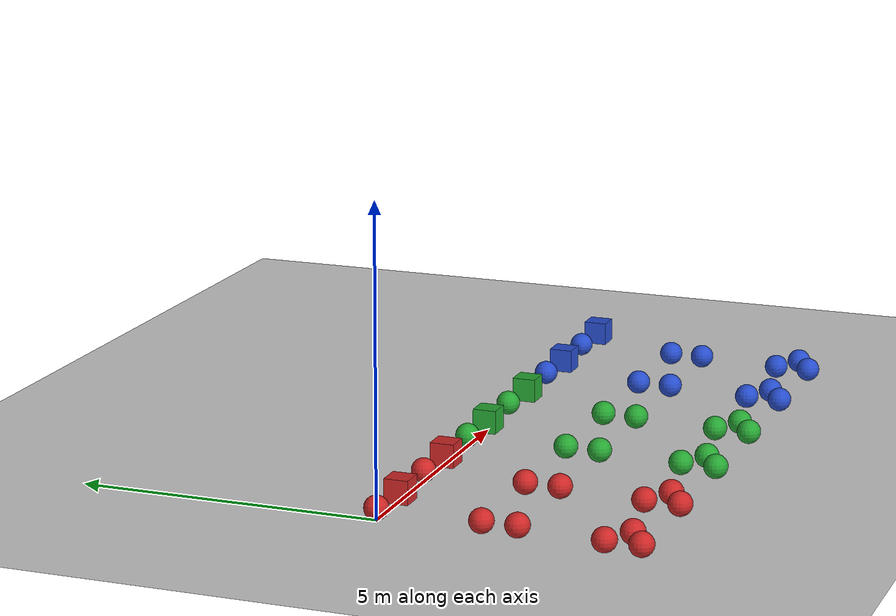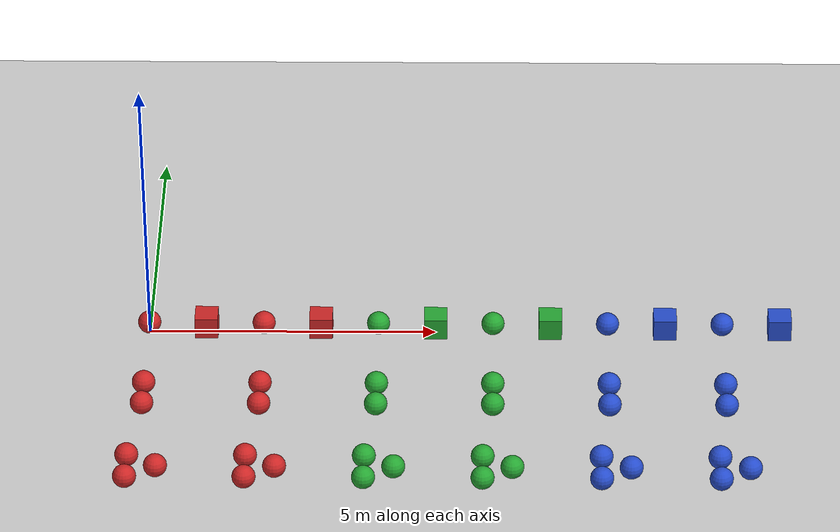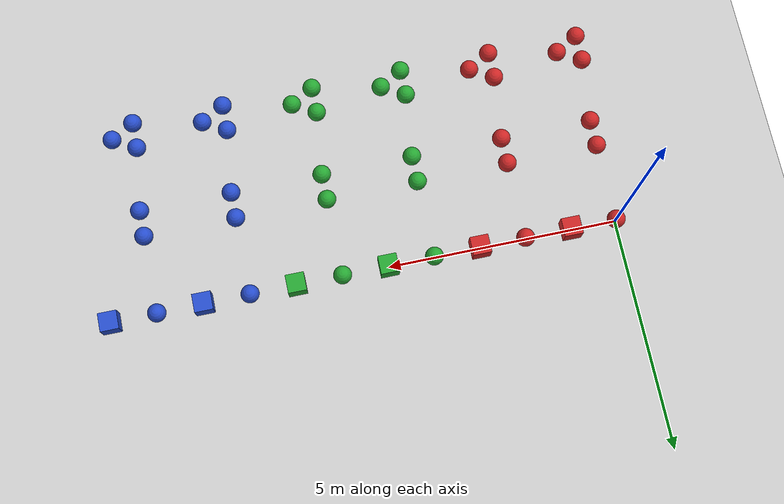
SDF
<?xml version="1.0" ?>
<!-- this file was generated using embedded ruby -->
<sdf version='1.6'>
  <world name='default'>
    <gui>
      <camera name='user_camera'>
        <pose>17 3 22 0 1.1 3.141592653589793</pose>
        <view_controller>orbit</view_controller>
      </camera>
    </gui>
    <physics type="ode">
      <dart>
        <collision_detector>ode</collision_detector>
      </dart>
    </physics>
    <include>
      <uri>model://sun</uri>
    </include>
    <include>
      <uri>model://ground_plane</uri>
    </include>
    <gravity>0 2 -9.81</gravity>

    <model name="lowball_0.2a">
      <pose>0 0 0 0 0 0</pose>
      <link name="link">
        <pose>0 0 0.2  0 0 0</pose>
        <inertial>
          <pose>0 0 -0.3  0 0 0</pose>
          <mass>1.0</mass>
          <inertia>
            <ixx>0.016000000000000004</ixx>
            <iyy>0.016000000000000004</iyy>
            <izz>0.016000000000000004</izz>
            <ixy>0.0</ixy>
            <ixz>0.0</ixz>
            <iyz>0.0</iyz>
          </inertia>
        </inertial>

        <collision name='collision_a'>
          <pose>0 0 0  0 0 0</pose>
          <geometry>
            <sphere>
              <radius>0.2</radius>
            </sphere>
          </geometry>
          <surface>
            <friction>
              <ode>
                <mu>0.5</mu>
                <mu2>0.5</mu2>
                <slip1>0.2</slip1>
                <slip2>0.2</slip2>
              </ode>
            </friction>
          </surface>
        </collision>
        <visual name='visual_a'>
          <pose>0 0 0  0 0 0</pose>
          <geometry>
            <sphere>
              <radius>0.2</radius>
            </sphere>
          </geometry>
          <material>
            <script>
              <uri>file://media/materials/scripts/gazebo.material</uri>
              <name>Gazebo/Red</name>
            </script>
          </material>
        </visual>

      </link>
    </model>

    <model name="lowball_0.2b">
      <pose>2 0 0 0 0 0</pose>
      <link name="link">
        <pose>0 0 0.2  0 0 0</pose>
        <inertial>
          <pose>0 0 -0.3  0 0 0</pose>
          <mass>2.0</mass>
          <inertia>
            <ixx>0.03200000000000001</ixx>
            <iyy>0.03200000000000001</iyy>
            <izz>0.03200000000000001</izz>
            <ixy>0.0</ixy>
            <ixz>0.0</ixz>
            <iyz>0.0</iyz>
          </inertia>
        </inertial>

        <collision name='collision_a'>
          <pose>0 0 0  0 0 0</pose>
          <geometry>
            <sphere>
              <radius>0.2</radius>
            </sphere>
          </geometry>
          <surface>
            <friction>
              <ode>
                <mu>0.5</mu>
                <mu2>0.5</mu2>
                <slip1>0.1</slip1>
                <slip2>0.1</slip2>
              </ode>
            </friction>
          </surface>
        </collision>
        <visual name='visual_a'>
          <pose>0 0 0  0 0 0</pose>
          <geometry>
            <sphere>
              <radius>0.2</radius>
            </sphere>
          </geometry>
          <material>
            <script>
              <uri>file://media/materials/scripts/gazebo.material</uri>
              <name>Gazebo/Red</name>
            </script>
          </material>
        </visual>

      </link>
    </model>

    <model name="lowball_0.4a">
      <pose>4 0 0 0 0 0</pose>
      <link name="link">
        <pose>0 0 0.2  0 0 0</pose>
        <inertial>
          <pose>0 0 -0.3  0 0 0</pose>
          <mass>2.0</mass>
          <inertia>
            <ixx>0.03200000000000001</ixx>
            <iyy>0.03200000000000001</iyy>
            <izz>0.03200000000000001</izz>
            <ixy>0.0</ixy>
            <ixz>0.0</ixz>
            <iyz>0.0</iyz>
          </inertia>
        </inertial>

        <collision name='collision_a'>
          <pose>0 0 0  0 0 0</pose>
          <geometry>
            <sphere>
              <radius>0.2</radius>
            </sphere>
          </geometry>
          <surface>
            <friction>
              <ode>
                <mu>0.5</mu>
                <mu2>0.5</mu2>
                <slip1>0.2</slip1>
                <slip2>0.2</slip2>
              </ode>
            </friction>
          </surface>
        </collision>
        <visual name='visual_a'>
          <pose>0 0 0  0 0 0</pose>
          <geometry>
            <sphere>
              <radius>0.2</radius>
            </sphere>
          </geometry>
          <material>
            <script>
              <uri>file://media/materials/scripts/gazebo.material</uri>
              <name>Gazebo/Green</name>
            </script>
          </material>
        </visual>

      </link>
    </model>

    <model name="lowball_0.4b">
      <pose>6 0 0 0 0 0</pose>
      <link name="link">
        <pose>0 0 0.2  0 0 0</pose>
        <inertial>
          <pose>0 0 -0.3  0 0 0</pose>
          <mass>4.0</mass>
          <inertia>
            <ixx>0.06400000000000002</ixx>
            <iyy>0.06400000000000002</iyy>
            <izz>0.06400000000000002</izz>
            <ixy>0.0</ixy>
            <ixz>0.0</ixz>
            <iyz>0.0</iyz>
          </inertia>
        </inertial>

        <collision name='collision_a'>
          <pose>0 0 0  0 0 0</pose>
          <geometry>
            <sphere>
              <radius>0.2</radius>
            </sphere>
          </geometry>
          <surface>
            <friction>
              <ode>
                <mu>0.5</mu>
                <mu2>0.5</mu2>
                <slip1>0.1</slip1>
                <slip2>0.1</slip2>
              </ode>
            </friction>
          </surface>
        </collision>
        <visual name='visual_a'>
          <pose>0 0 0  0 0 0</pose>
          <geometry>
            <sphere>
              <radius>0.2</radius>
            </sphere>
          </geometry>
          <material>
            <script>
              <uri>file://media/materials/scripts/gazebo.material</uri>
              <name>Gazebo/Green</name>
            </script>
          </material>
        </visual>

      </link>
    </model>

    <model name="lowball_0.6a">
      <pose>8 0 0 0 0 0</pose>
      <link name="link">
        <pose>0 0 0.2  0 0 0</pose>
        <inertial>
          <pose>0 0 -0.3  0 0 0</pose>
          <mass>3.0</mass>
          <inertia>
            <ixx>0.048000000000000015</ixx>
            <iyy>0.048000000000000015</iyy>
            <izz>0.048000000000000015</izz>
            <ixy>0.0</ixy>
            <ixz>0.0</ixz>
            <iyz>0.0</iyz>
          </inertia>
        </inertial>

        <collision name='collision_a'>
          <pose>0 0 0  0 0 0</pose>
          <geometry>
            <sphere>
              <radius>0.2</radius>
            </sphere>
          </geometry>
          <surface>
            <friction>
              <ode>
                <mu>0.5</mu>
                <mu2>0.5</mu2>
                <slip1>0.2</slip1>
                <slip2>0.2</slip2>
              </ode>
            </friction>
          </surface>
        </collision>
        <visual name='visual_a'>
          <pose>0 0 0  0 0 0</pose>
          <geometry>
            <sphere>
              <radius>0.2</radius>
            </sphere>
          </geometry>
          <material>
            <script>
              <uri>file://media/materials/scripts/gazebo.material</uri>
              <name>Gazebo/Blue</name>
            </script>
          </material>
        </visual>

      </link>
    </model>

    <model name="lowball_0.6b">
      <pose>10 0 0 0 0 0</pose>
      <link name="link">
        <pose>0 0 0.2  0 0 0</pose>
        <inertial>
          <pose>0 0 -0.3  0 0 0</pose>
          <mass>6.0</mass>
          <inertia>
            <ixx>0.09600000000000003</ixx>
            <iyy>0.09600000000000003</iyy>
            <izz>0.09600000000000003</izz>
            <ixy>0.0</ixy>
            <ixz>0.0</ixz>
            <iyz>0.0</iyz>
          </inertia>
        </inertial>

        <collision name='collision_a'>
          <pose>0 0 0  0 0 0</pose>
          <geometry>
            <sphere>
              <radius>0.2</radius>
            </sphere>
          </geometry>
          <surface>
            <friction>
              <ode>
                <mu>0.5</mu>
                <mu2>0.5</mu2>
                <slip1>0.1</slip1>
                <slip2>0.1</slip2>
              </ode>
            </friction>
          </surface>
        </collision>
        <visual name='visual_a'>
          <pose>0 0 0  0 0 0</pose>
          <geometry>
            <sphere>
              <radius>0.2</radius>
            </sphere>
          </geometry>
          <material>
            <script>
              <uri>file://media/materials/scripts/gazebo.material</uri>
              <name>Gazebo/Blue</name>
            </script>
          </material>
        </visual>

      </link>
    </model>

    <model name="twoball_0.2a">
      <pose>0 -2 0 0 0 0</pose>
      <link name="link">
        <pose>0 0 0.2  0 0 0</pose>
        <inertial>
          <pose>0 0.0 0  0 0 0</pose>
          <mass>1.0</mass>
          <inertia>
            <ixx>0.09933333333333336</ixx>
            <iyy>0.016000000000000004</iyy>
            <izz>0.09933333333333336</izz>
            <ixy>0.0</ixy>
            <ixz>0.0</ixz>
            <iyz>0.0</iyz>
          </inertia>
        </inertial>

        <collision name='collision_a'>
          <pose>0 0.2886751345948129 0  0 0 0</pose>
          <geometry>
            <sphere>
              <radius>0.2</radius>
            </sphere>
          </geometry>
          <surface>
            <friction>
              <ode>
                <mu>0.5</mu>
                <mu2>0.5</mu2>
                <slip1>0.2</slip1>
                <slip2>0.2</slip2>
              </ode>
            </friction>
          </surface>
        </collision>
        <visual name='visual_a'>
          <pose>0 0.2886751345948129 0  0 0 0</pose>
          <geometry>
            <sphere>
              <radius>0.2</radius>
            </sphere>
          </geometry>
          <material>
            <script>
              <uri>file://media/materials/scripts/gazebo.material</uri>
              <name>Gazebo/Red</name>
            </script>
          </material>
        </visual>

        <collision name='collision_b'>
          <pose>0 -0.2886751345948129 0  0 0 0</pose>
          <geometry>
            <sphere>
              <radius>0.2</radius>
            </sphere>
          </geometry>
          <surface>
            <friction>
              <ode>
                <mu>0.5</mu>
                <mu2>0.5</mu2>
                <slip1>0.2</slip1>
                <slip2>0.2</slip2>
              </ode>
            </friction>
          </surface>
        </collision>
        <visual name='visual_b'>
          <pose>0 -0.2886751345948129 0  0 0 0</pose>
          <geometry>
            <sphere>
              <radius>0.2</radius>
            </sphere>
          </geometry>
          <material>
            <script>
              <uri>file://media/materials/scripts/gazebo.material</uri>
              <name>Gazebo/Red</name>
            </script>
          </material>
        </visual>

      </link>
    </model>

    <model name="twoball_0.2b">
      <pose>2 -2 0 0 0 0</pose>
      <link name="link">
        <pose>0 0 0.2  0 0 0</pose>
        <inertial>
          <pose>0 0.0 0  0 0 0</pose>
          <mass>2.0</mass>
          <inertia>
            <ixx>0.1986666666666667</ixx>
            <iyy>0.03200000000000001</iyy>
            <izz>0.1986666666666667</izz>
            <ixy>0.0</ixy>
            <ixz>0.0</ixz>
            <iyz>0.0</iyz>
          </inertia>
        </inertial>

        <collision name='collision_a'>
          <pose>0 0.2886751345948129 0  0 0 0</pose>
          <geometry>
            <sphere>
              <radius>0.2</radius>
            </sphere>
          </geometry>
          <surface>
            <friction>
              <ode>
                <mu>0.5</mu>
                <mu2>0.5</mu2>
                <slip1>0.1</slip1>
                <slip2>0.1</slip2>
              </ode>
            </friction>
          </surface>
        </collision>
        <visual name='visual_a'>
          <pose>0 0.2886751345948129 0  0 0 0</pose>
          <geometry>
            <sphere>
              <radius>0.2</radius>
            </sphere>
          </geometry>
          <material>
            <script>
              <uri>file://media/materials/scripts/gazebo.material</uri>
              <name>Gazebo/Red</name>
            </script>
          </material>
        </visual>

        <collision name='collision_b'>
          <pose>0 -0.2886751345948129 0  0 0 0</pose>
          <geometry>
            <sphere>
              <radius>0.2</radius>
            </sphere>
          </geometry>
          <surface>
            <friction>
              <ode>
                <mu>0.5</mu>
                <mu2>0.5</mu2>
                <slip1>0.1</slip1>
                <slip2>0.1</slip2>
              </ode>
            </friction>
          </surface>
        </collision>
        <visual name='visual_b'>
          <pose>0 -0.2886751345948129 0  0 0 0</pose>
          <geometry>
            <sphere>
              <radius>0.2</radius>
            </sphere>
          </geometry>
          <material>
            <script>
              <uri>file://media/materials/scripts/gazebo.material</uri>
              <name>Gazebo/Red</name>
            </script>
          </material>
        </visual>

      </link>
    </model>

    <model name="twoball_0.4a">
      <pose>4 -2 0 0 0 0</pose>
      <link name="link">
        <pose>0 0 0.2  0 0 0</pose>
        <inertial>
          <pose>0 0.0 0  0 0 0</pose>
          <mass>2.0</mass>
          <inertia>
            <ixx>0.1986666666666667</ixx>
            <iyy>0.03200000000000001</iyy>
            <izz>0.1986666666666667</izz>
            <ixy>0.0</ixy>
            <ixz>0.0</ixz>
            <iyz>0.0</iyz>
          </inertia>
        </inertial>

        <collision name='collision_a'>
          <pose>0 0.2886751345948129 0  0 0 0</pose>
          <geometry>
            <sphere>
              <radius>0.2</radius>
            </sphere>
          </geometry>
          <surface>
            <friction>
              <ode>
                <mu>0.5</mu>
                <mu2>0.5</mu2>
                <slip1>0.2</slip1>
                <slip2>0.2</slip2>
              </ode>
            </friction>
          </surface>
        </collision>
        <visual name='visual_a'>
          <pose>0 0.2886751345948129 0  0 0 0</pose>
          <geometry>
            <sphere>
              <radius>0.2</radius>
            </sphere>
          </geometry>
          <material>
            <script>
              <uri>file://media/materials/scripts/gazebo.material</uri>
              <name>Gazebo/Green</name>
            </script>
          </material>
        </visual>

        <collision name='collision_b'>
          <pose>0 -0.2886751345948129 0  0 0 0</pose>
          <geometry>
            <sphere>
              <radius>0.2</radius>
            </sphere>
          </geometry>
          <surface>
            <friction>
              <ode>
                <mu>0.5</mu>
                <mu2>0.5</mu2>
                <slip1>0.2</slip1>
                <slip2>0.2</slip2>
              </ode>
            </friction>
          </surface>
        </collision>
        <visual name='visual_b'>
          <pose>0 -0.2886751345948129 0  0 0 0</pose>
          <geometry>
            <sphere>
              <radius>0.2</radius>
            </sphere>
          </geometry>
          <material>
            <script>
              <uri>file://media/materials/scripts/gazebo.material</uri>
              <name>Gazebo/Green</name>
            </script>
          </material>
        </visual>

      </link>
    </model>

    <model name="twoball_0.4b">
      <pose>6 -2 0 0 0 0</pose>
      <link name="link">
        <pose>0 0 0.2  0 0 0</pose>
        <inertial>
          <pose>0 0.0 0  0 0 0</pose>
          <mass>4.0</mass>
          <inertia>
            <ixx>0.3973333333333334</ixx>
            <iyy>0.06400000000000002</iyy>
            <izz>0.3973333333333334</izz>
            <ixy>0.0</ixy>
            <ixz>0.0</ixz>
            <iyz>0.0</iyz>
          </inertia>
        </inertial>

        <collision name='collision_a'>
          <pose>0 0.2886751345948129 0  0 0 0</pose>
          <geometry>
            <sphere>
              <radius>0.2</radius>
            </sphere>
          </geometry>
          <surface>
            <friction>
              <ode>
                <mu>0.5</mu>
                <mu2>0.5</mu2>
                <slip1>0.1</slip1>
                <slip2>0.1</slip2>
              </ode>
            </friction>
          </surface>
        </collision>
        <visual name='visual_a'>
          <pose>0 0.2886751345948129 0  0 0 0</pose>
          <geometry>
            <sphere>
              <radius>0.2</radius>
            </sphere>
          </geometry>
          <material>
            <script>
              <uri>file://media/materials/scripts/gazebo.material</uri>
              <name>Gazebo/Green</name>
            </script>
          </material>
        </visual>

        <collision name='collision_b'>
          <pose>0 -0.2886751345948129 0  0 0 0</pose>
          <geometry>
            <sphere>
              <radius>0.2</radius>
            </sphere>
          </geometry>
          <surface>
            <friction>
              <ode>
                <mu>0.5</mu>
                <mu2>0.5</mu2>
                <slip1>0.1</slip1>
                <slip2>0.1</slip2>
              </ode>
            </friction>
          </surface>
        </collision>
        <visual name='visual_b'>
          <pose>0 -0.2886751345948129 0  0 0 0</pose>
          <geometry>
            <sphere>
              <radius>0.2</radius>
            </sphere>
          </geometry>
          <material>
            <script>
              <uri>file://media/materials/scripts/gazebo.material</uri>
              <name>Gazebo/Green</name>
            </script>
          </material>
        </visual>

      </link>
    </model>

    <model name="twoball_0.6a">
      <pose>8 -2 0 0 0 0</pose>
      <link name="link">
        <pose>0 0 0.2  0 0 0</pose>
        <inertial>
          <pose>0 0.0 0  0 0 0</pose>
          <mass>3.0</mass>
          <inertia>
            <ixx>0.29800000000000004</ixx>
            <iyy>0.048000000000000015</iyy>
            <izz>0.29800000000000004</izz>
            <ixy>0.0</ixy>
            <ixz>0.0</ixz>
            <iyz>0.0</iyz>
          </inertia>
        </inertial>

        <collision name='collision_a'>
          <pose>0 0.2886751345948129 0  0 0 0</pose>
          <geometry>
            <sphere>
              <radius>0.2</radius>
            </sphere>
          </geometry>
          <surface>
            <friction>
              <ode>
                <mu>0.5</mu>
                <mu2>0.5</mu2>
                <slip1>0.2</slip1>
                <slip2>0.2</slip2>
              </ode>
            </friction>
          </surface>
        </collision>
        <visual name='visual_a'>
          <pose>0 0.2886751345948129 0  0 0 0</pose>
          <geometry>
            <sphere>
              <radius>0.2</radius>
            </sphere>
          </geometry>
          <material>
            <script>
              <uri>file://media/materials/scripts/gazebo.material</uri>
              <name>Gazebo/Blue</name>
            </script>
          </material>
        </visual>

        <collision name='collision_b'>
          <pose>0 -0.2886751345948129 0  0 0 0</pose>
          <geometry>
            <sphere>
              <radius>0.2</radius>
            </sphere>
          </geometry>
          <surface>
            <friction>
              <ode>
                <mu>0.5</mu>
                <mu2>0.5</mu2>
                <slip1>0.2</slip1>
                <slip2>0.2</slip2>
              </ode>
            </friction>
          </surface>
        </collision>
        <visual name='visual_b'>
          <pose>0 -0.2886751345948129 0  0 0 0</pose>
          <geometry>
            <sphere>
              <radius>0.2</radius>
            </sphere>
          </geometry>
          <material>
            <script>
              <uri>file://media/materials/scripts/gazebo.material</uri>
              <name>Gazebo/Blue</name>
            </script>
          </material>
        </visual>

      </link>
    </model>

    <model name="twoball_0.6b">
      <pose>10 -2 0 0 0 0</pose>
      <link name="link">
        <pose>0 0 0.2  0 0 0</pose>
        <inertial>
          <pose>0 0.0 0  0 0 0</pose>
          <mass>6.0</mass>
          <inertia>
            <ixx>0.5960000000000001</ixx>
            <iyy>0.09600000000000003</iyy>
            <izz>0.5960000000000001</izz>
            <ixy>0.0</ixy>
            <ixz>0.0</ixz>
            <iyz>0.0</iyz>
          </inertia>
        </inertial>

        <collision name='collision_a'>
          <pose>0 0.2886751345948129 0  0 0 0</pose>
          <geometry>
            <sphere>
              <radius>0.2</radius>
            </sphere>
          </geometry>
          <surface>
            <friction>
              <ode>
                <mu>0.5</mu>
                <mu2>0.5</mu2>
                <slip1>0.1</slip1>
                <slip2>0.1</slip2>
              </ode>
            </friction>
          </surface>
        </collision>
        <visual name='visual_a'>
          <pose>0 0.2886751345948129 0  0 0 0</pose>
          <geometry>
            <sphere>
              <radius>0.2</radius>
            </sphere>
          </geometry>
          <material>
            <script>
              <uri>file://media/materials/scripts/gazebo.material</uri>
              <name>Gazebo/Blue</name>
            </script>
          </material>
        </visual>

        <collision name='collision_b'>
          <pose>0 -0.2886751345948129 0  0 0 0</pose>
          <geometry>
            <sphere>
              <radius>0.2</radius>
            </sphere>
          </geometry>
          <surface>
            <friction>
              <ode>
                <mu>0.5</mu>
                <mu2>0.5</mu2>
                <slip1>0.1</slip1>
                <slip2>0.1</slip2>
              </ode>
            </friction>
          </surface>
        </collision>
        <visual name='visual_b'>
          <pose>0 -0.2886751345948129 0  0 0 0</pose>
          <geometry>
            <sphere>
              <radius>0.2</radius>
            </sphere>
          </geometry>
          <material>
            <script>
              <uri>file://media/materials/scripts/gazebo.material</uri>
              <name>Gazebo/Blue</name>
            </script>
          </material>
        </visual>

      </link>
    </model>

    <model name="triball_0.2a">
      <pose>0 -4 0 0 0 0</pose>
      <link name="link">
        <pose>0 0 0.2  0 0 0</pose>
        <inertial>
          <pose>0.0 0.0 0  0 0 0</pose>
          <mass>1.0</mass>
          <inertia>
            <ixx>0.07155555555555557</ixx>
            <iyy>0.07155555555555555</iyy>
            <izz>0.12711111111111112</izz>
            <ixy>0.0</ixy>
            <ixz>0.0</ixz>
            <iyz>0.0</iyz>
          </inertia>
        </inertial>

        <collision name='collision_a'>
          <pose>0.3333333333333333 0 0  0 0 0</pose>
          <geometry>
            <sphere>
              <radius>0.2</radius>
            </sphere>
          </geometry>
          <surface>
            <friction>
              <ode>
                <mu>0.5</mu>
                <mu2>0.5</mu2>
                <slip1>0.2</slip1>
                <slip2>0.2</slip2>
              </ode>
            </friction>
          </surface>
        </collision>
        <visual name='visual_a'>
          <pose>0.3333333333333333 0 0  0 0 0</pose>
          <geometry>
            <sphere>
              <radius>0.2</radius>
            </sphere>
          </geometry>
          <material>
            <script>
              <uri>file://media/materials/scripts/gazebo.material</uri>
              <name>Gazebo/Red</name>
            </script>
          </material>
        </visual>

        <collision name='collision_b'>
          <pose>-0.16666666666666666 0.2886751345948129 0  0 0 0</pose>
          <geometry>
            <sphere>
              <radius>0.2</radius>
            </sphere>
          </geometry>
          <surface>
            <friction>
              <ode>
                <mu>0.5</mu>
                <mu2>0.5</mu2>
                <slip1>0.2</slip1>
                <slip2>0.2</slip2>
              </ode>
            </friction>
          </surface>
        </collision>
        <visual name='visual_b'>
          <pose>-0.16666666666666666 0.2886751345948129 0  0 0 0</pose>
          <geometry>
            <sphere>
              <radius>0.2</radius>
            </sphere>
          </geometry>
          <material>
            <script>
              <uri>file://media/materials/scripts/gazebo.material</uri>
              <name>Gazebo/Red</name>
            </script>
          </material>
        </visual>

        <collision name='collision_c'>
          <pose>-0.16666666666666666 -0.2886751345948129 0  0 0 0</pose>
          <geometry>
            <sphere>
              <radius>0.2</radius>
            </sphere>
          </geometry>
          <surface>
            <friction>
              <ode>
                <mu>0.5</mu>
                <mu2>0.5</mu2>
                <slip1>0.2</slip1>
                <slip2>0.2</slip2>
              </ode>
            </friction>
          </surface>
        </collision>
        <visual name='visual_c'>
          <pose>-0.16666666666666666 -0.2886751345948129 0  0 0 0</pose>
          <geometry>
            <sphere>
              <radius>0.2</radius>
            </sphere>
          </geometry>
          <material>
            <script>
              <uri>file://media/materials/scripts/gazebo.material</uri>
              <name>Gazebo/Red</name>
            </script>
          </material>
        </visual>

      </link>
    </model>

    <model name="triball_0.2b">
      <pose>2 -4 0 0 0 0</pose>
      <link name="link">
        <pose>0 0 0.2  0 0 0</pose>
        <inertial>
          <pose>0.0 0.0 0  0 0 0</pose>
          <mass>2.0</mass>
          <inertia>
            <ixx>0.14311111111111113</ixx>
            <iyy>0.1431111111111111</iyy>
            <izz>0.25422222222222224</izz>
            <ixy>0.0</ixy>
            <ixz>0.0</ixz>
            <iyz>0.0</iyz>
          </inertia>
        </inertial>

        <collision name='collision_a'>
          <pose>0.3333333333333333 0 0  0 0 0</pose>
          <geometry>
            <sphere>
              <radius>0.2</radius>
            </sphere>
          </geometry>
          <surface>
            <friction>
              <ode>
                <mu>0.5</mu>
                <mu2>0.5</mu2>
                <slip1>0.1</slip1>
                <slip2>0.1</slip2>
              </ode>
            </friction>
          </surface>
        </collision>
        <visual name='visual_a'>
          <pose>0.3333333333333333 0 0  0 0 0</pose>
          <geometry>
            <sphere>
              <radius>0.2</radius>
            </sphere>
          </geometry>
          <material>
            <script>
              <uri>file://media/materials/scripts/gazebo.material</uri>
              <name>Gazebo/Red</name>
            </script>
          </material>
        </visual>

        <collision name='collision_b'>
          <pose>-0.16666666666666666 0.2886751345948129 0  0 0 0</pose>
          <geometry>
            <sphere>
              <radius>0.2</radius>
            </sphere>
          </geometry>
          <surface>
            <friction>
              <ode>
                <mu>0.5</mu>
                <mu2>0.5</mu2>
                <slip1>0.1</slip1>
                <slip2>0.1</slip2>
              </ode>
            </friction>
          </surface>
        </collision>
        <visual name='visual_b'>
          <pose>-0.16666666666666666 0.2886751345948129 0  0 0 0</pose>
          <geometry>
            <sphere>
              <radius>0.2</radius>
            </sphere>
          </geometry>
          <material>
            <script>
              <uri>file://media/materials/scripts/gazebo.material</uri>
              <name>Gazebo/Red</name>
            </script>
          </material>
        </visual>

        <collision name='collision_c'>
          <pose>-0.16666666666666666 -0.2886751345948129 0  0 0 0</pose>
          <geometry>
            <sphere>
              <radius>0.2</radius>
            </sphere>
          </geometry>
          <surface>
            <friction>
              <ode>
                <mu>0.5</mu>
                <mu2>0.5</mu2>
                <slip1>0.1</slip1>
                <slip2>0.1</slip2>
              </ode>
            </friction>
          </surface>
        </collision>
        <visual name='visual_c'>
          <pose>-0.16666666666666666 -0.2886751345948129 0  0 0 0</pose>
          <geometry>
            <sphere>
              <radius>0.2</radius>
            </sphere>
          </geometry>
          <material>
            <script>
              <uri>file://media/materials/scripts/gazebo.material</uri>
              <name>Gazebo/Red</name>
            </script>
          </material>
        </visual>

      </link>
    </model>

    <model name="triball_0.4a">
      <pose>4 -4 0 0 0 0</pose>
      <link name="link">
        <pose>0 0 0.2  0 0 0</pose>
        <inertial>
          <pose>0.0 0.0 0  0 0 0</pose>
          <mass>2.0</mass>
          <inertia>
            <ixx>0.14311111111111113</ixx>
            <iyy>0.1431111111111111</iyy>
            <izz>0.25422222222222224</izz>
            <ixy>0.0</ixy>
            <ixz>0.0</ixz>
            <iyz>0.0</iyz>
          </inertia>
        </inertial>

        <collision name='collision_a'>
          <pose>0.3333333333333333 0 0  0 0 0</pose>
          <geometry>
            <sphere>
              <radius>0.2</radius>
            </sphere>
          </geometry>
          <surface>
            <friction>
              <ode>
                <mu>0.5</mu>
                <mu2>0.5</mu2>
                <slip1>0.2</slip1>
                <slip2>0.2</slip2>
              </ode>
            </friction>
          </surface>
        </collision>
        <visual name='visual_a'>
          <pose>0.3333333333333333 0 0  0 0 0</pose>
          <geometry>
            <sphere>
              <radius>0.2</radius>
            </sphere>
          </geometry>
          <material>
            <script>
              <uri>file://media/materials/scripts/gazebo.material</uri>
              <name>Gazebo/Green</name>
            </script>
          </material>
        </visual>

        <collision name='collision_b'>
          <pose>-0.16666666666666666 0.2886751345948129 0  0 0 0</pose>
          <geometry>
            <sphere>
              <radius>0.2</radius>
            </sphere>
          </geometry>
          <surface>
            <friction>
              <ode>
                <mu>0.5</mu>
                <mu2>0.5</mu2>
                <slip1>0.2</slip1>
                <slip2>0.2</slip2>
              </ode>
            </friction>
          </surface>
        </collision>
        <visual name='visual_b'>
          <pose>-0.16666666666666666 0.2886751345948129 0  0 0 0</pose>
          <geometry>
            <sphere>
              <radius>0.2</radius>
            </sphere>
          </geometry>
          <material>
            <script>
              <uri>file://media/materials/scripts/gazebo.material</uri>
              <name>Gazebo/Green</name>
            </script>
          </material>
        </visual>

        <collision name='collision_c'>
          <pose>-0.16666666666666666 -0.2886751345948129 0  0 0 0</pose>
          <geometry>
            <sphere>
              <radius>0.2</radius>
            </sphere>
          </geometry>
          <surface>
            <friction>
              <ode>
                <mu>0.5</mu>
                <mu2>0.5</mu2>
                <slip1>0.2</slip1>
                <slip2>0.2</slip2>
              </ode>
            </friction>
          </surface>
        </collision>
        <visual name='visual_c'>
          <pose>-0.16666666666666666 -0.2886751345948129 0  0 0 0</pose>
          <geometry>
            <sphere>
              <radius>0.2</radius>
            </sphere>
          </geometry>
          <material>
            <script>
              <uri>file://media/materials/scripts/gazebo.material</uri>
              <name>Gazebo/Green</name>
            </script>
          </material>
        </visual>

      </link>
    </model>

    <model name="triball_0.4b">
      <pose>6 -4 0 0 0 0</pose>
      <link name="link">
        <pose>0 0 0.2  0 0 0</pose>
        <inertial>
          <pose>0.0 0.0 0  0 0 0</pose>
          <mass>4.0</mass>
          <inertia>
            <ixx>0.28622222222222227</ixx>
            <iyy>0.2862222222222222</iyy>
            <izz>0.5084444444444445</izz>
            <ixy>0.0</ixy>
            <ixz>0.0</ixz>
            <iyz>0.0</iyz>
          </inertia>
        </inertial>

        <collision name='collision_a'>
          <pose>0.3333333333333333 0 0  0 0 0</pose>
          <geometry>
            <sphere>
              <radius>0.2</radius>
            </sphere>
          </geometry>
          <surface>
            <friction>
              <ode>
                <mu>0.5</mu>
                <mu2>0.5</mu2>
                <slip1>0.1</slip1>
                <slip2>0.1</slip2>
              </ode>
            </friction>
          </surface>
        </collision>
        <visual name='visual_a'>
          <pose>0.3333333333333333 0 0  0 0 0</pose>
          <geometry>
            <sphere>
              <radius>0.2</radius>
            </sphere>
          </geometry>
          <material>
            <script>
              <uri>file://media/materials/scripts/gazebo.material</uri>
              <name>Gazebo/Green</name>
            </script>
          </material>
        </visual>

        <collision name='collision_b'>
          <pose>-0.16666666666666666 0.2886751345948129 0  0 0 0</pose>
          <geometry>
            <sphere>
              <radius>0.2</radius>
            </sphere>
          </geometry>
          <surface>
            <friction>
              <ode>
                <mu>0.5</mu>
                <mu2>0.5</mu2>
                <slip1>0.1</slip1>
                <slip2>0.1</slip2>
              </ode>
            </friction>
          </surface>
        </collision>
        <visual name='visual_b'>
          <pose>-0.16666666666666666 0.2886751345948129 0  0 0 0</pose>
          <geometry>
            <sphere>
              <radius>0.2</radius>
            </sphere>
          </geometry>
          <material>
            <script>
              <uri>file://media/materials/scripts/gazebo.material</uri>
              <name>Gazebo/Green</name>
            </script>
          </material>
        </visual>

        <collision name='collision_c'>
          <pose>-0.16666666666666666 -0.2886751345948129 0  0 0 0</pose>
          <geometry>
            <sphere>
              <radius>0.2</radius>
            </sphere>
          </geometry>
          <surface>
            <friction>
              <ode>
                <mu>0.5</mu>
                <mu2>0.5</mu2>
                <slip1>0.1</slip1>
                <slip2>0.1</slip2>
              </ode>
            </friction>
          </surface>
        </collision>
        <visual name='visual_c'>
          <pose>-0.16666666666666666 -0.2886751345948129 0  0 0 0</pose>
          <geometry>
            <sphere>
              <radius>0.2</radius>
            </sphere>
          </geometry>
          <material>
            <script>
              <uri>file://media/materials/scripts/gazebo.material</uri>
              <name>Gazebo/Green</name>
            </script>
          </material>
        </visual>

      </link>
    </model>

    <model name="triball_0.6a">
      <pose>8 -4 0 0 0 0</pose>
      <link name="link">
        <pose>0 0 0.2  0 0 0</pose>
        <inertial>
          <pose>0.0 0.0 0  0 0 0</pose>
          <mass>3.0</mass>
          <inertia>
            <ixx>0.21466666666666673</ixx>
            <iyy>0.21466666666666667</iyy>
            <izz>0.3813333333333334</izz>
            <ixy>0.0</ixy>
            <ixz>0.0</ixz>
            <iyz>0.0</iyz>
          </inertia>
        </inertial>

        <collision name='collision_a'>
          <pose>0.3333333333333333 0 0  0 0 0</pose>
          <geometry>
            <sphere>
              <radius>0.2</radius>
            </sphere>
          </geometry>
          <surface>
            <friction>
              <ode>
                <mu>0.5</mu>
                <mu2>0.5</mu2>
                <slip1>0.2</slip1>
                <slip2>0.2</slip2>
              </ode>
            </friction>
          </surface>
        </collision>
        <visual name='visual_a'>
          <pose>0.3333333333333333 0 0  0 0 0</pose>
          <geometry>
            <sphere>
              <radius>0.2</radius>
            </sphere>
          </geometry>
          <material>
            <script>
              <uri>file://media/materials/scripts/gazebo.material</uri>
              <name>Gazebo/Blue</name>
            </script>
          </material>
        </visual>

        <collision name='collision_b'>
          <pose>-0.16666666666666666 0.2886751345948129 0  0 0 0</pose>
          <geometry>
            <sphere>
              <radius>0.2</radius>
            </sphere>
          </geometry>
          <surface>
            <friction>
              <ode>
                <mu>0.5</mu>
                <mu2>0.5</mu2>
                <slip1>0.2</slip1>
                <slip2>0.2</slip2>
              </ode>
            </friction>
          </surface>
        </collision>
        <visual name='visual_b'>
          <pose>-0.16666666666666666 0.2886751345948129 0  0 0 0</pose>
          <geometry>
            <sphere>
              <radius>0.2</radius>
            </sphere>
          </geometry>
          <material>
            <script>
              <uri>file://media/materials/scripts/gazebo.material</uri>
              <name>Gazebo/Blue</name>
            </script>
          </material>
        </visual>

        <collision name='collision_c'>
          <pose>-0.16666666666666666 -0.2886751345948129 0  0 0 0</pose>
          <geometry>
            <sphere>
              <radius>0.2</radius>
            </sphere>
          </geometry>
          <surface>
            <friction>
              <ode>
                <mu>0.5</mu>
                <mu2>0.5</mu2>
                <slip1>0.2</slip1>
                <slip2>0.2</slip2>
              </ode>
            </friction>
          </surface>
        </collision>
        <visual name='visual_c'>
          <pose>-0.16666666666666666 -0.2886751345948129 0  0 0 0</pose>
          <geometry>
            <sphere>
              <radius>0.2</radius>
            </sphere>
          </geometry>
          <material>
            <script>
              <uri>file://media/materials/scripts/gazebo.material</uri>
              <name>Gazebo/Blue</name>
            </script>
          </material>
        </visual>

      </link>
    </model>

    <model name="triball_0.6b">
      <pose>10 -4 0 0 0 0</pose>
      <link name="link">
        <pose>0 0 0.2  0 0 0</pose>
        <inertial>
          <pose>0.0 0.0 0  0 0 0</pose>
          <mass>6.0</mass>
          <inertia>
            <ixx>0.42933333333333346</ixx>
            <iyy>0.42933333333333334</iyy>
            <izz>0.7626666666666668</izz>
            <ixy>0.0</ixy>
            <ixz>0.0</ixz>
            <iyz>0.0</iyz>
          </inertia>
        </inertial>

        <collision name='collision_a'>
          <pose>0.3333333333333333 0 0  0 0 0</pose>
          <geometry>
            <sphere>
              <radius>0.2</radius>
            </sphere>
          </geometry>
          <surface>
            <friction>
              <ode>
                <mu>0.5</mu>
                <mu2>0.5</mu2>
                <slip1>0.1</slip1>
                <slip2>0.1</slip2>
              </ode>
            </friction>
          </surface>
        </collision>
        <visual name='visual_a'>
          <pose>0.3333333333333333 0 0  0 0 0</pose>
          <geometry>
            <sphere>
              <radius>0.2</radius>
            </sphere>
          </geometry>
          <material>
            <script>
              <uri>file://media/materials/scripts/gazebo.material</uri>
              <name>Gazebo/Blue</name>
            </script>
          </material>
        </visual>

        <collision name='collision_b'>
          <pose>-0.16666666666666666 0.2886751345948129 0  0 0 0</pose>
          <geometry>
            <sphere>
              <radius>0.2</radius>
            </sphere>
          </geometry>
          <surface>
            <friction>
              <ode>
                <mu>0.5</mu>
                <mu2>0.5</mu2>
                <slip1>0.1</slip1>
                <slip2>0.1</slip2>
              </ode>
            </friction>
          </surface>
        </collision>
        <visual name='visual_b'>
          <pose>-0.16666666666666666 0.2886751345948129 0  0 0 0</pose>
          <geometry>
            <sphere>
              <radius>0.2</radius>
            </sphere>
          </geometry>
          <material>
            <script>
              <uri>file://media/materials/scripts/gazebo.material</uri>
              <name>Gazebo/Blue</name>
            </script>
          </material>
        </visual>

        <collision name='collision_c'>
          <pose>-0.16666666666666666 -0.2886751345948129 0  0 0 0</pose>
          <geometry>
            <sphere>
              <radius>0.2</radius>
            </sphere>
          </geometry>
          <surface>
            <friction>
              <ode>
                <mu>0.5</mu>
                <mu2>0.5</mu2>
                <slip1>0.1</slip1>
                <slip2>0.1</slip2>
              </ode>
            </friction>
          </surface>
        </collision>
        <visual name='visual_c'>
          <pose>-0.16666666666666666 -0.2886751345948129 0  0 0 0</pose>
          <geometry>
            <sphere>
              <radius>0.2</radius>
            </sphere>
          </geometry>
          <material>
            <script>
              <uri>file://media/materials/scripts/gazebo.material</uri>
              <name>Gazebo/Blue</name>
            </script>
          </material>
        </visual>

      </link>
    </model>

    <model name="boxball_0.2a">
      <pose>1.0 0 0  0 0 0</pose>
      <link name="link">
        <pose>0 0 0.2  0 0 0</pose>
        <inertial>
          <mass>1.0</mass>
          <inertia>
            <ixx>0.026666666666666672</ixx>
            <iyy>0.026666666666666672</iyy>
            <izz>0.026666666666666672</izz>
            <ixy>0.0</ixy>
            <ixz>0.0</ixz>
            <iyz>0.0</iyz>
          </inertia>
        </inertial>
        <collision name="collision">
          <geometry>
            <box>
              <size>0.4 0.4 0.4</size>
            </box>
          </geometry>
          <surface>
            <friction>
              <ode>
                <mu>0.5</mu>
                <mu2>0.5</mu2>
                <slip1>0.2</slip1>
                <slip2>0.2</slip2>
              </ode>
            </friction>
          </surface>
        </collision>
        <visual name="visual">
          <geometry>
            <box>
              <size>0.4 0.4 0.4</size>
            </box>
          </geometry>
          <material>
            <script>
              <uri>file://media/materials/scripts/gazebo.material</uri>
              <name>Gazebo/Red</name>
            </script>
          </material>
        </visual>
      </link>
    </model>

    <model name="boxball_0.2b">
      <pose>3.0 0 0  0 0 0</pose>
      <link name="link">
        <pose>0 0 0.2  0 0 0</pose>
        <inertial>
          <mass>2.0</mass>
          <inertia>
            <ixx>0.053333333333333344</ixx>
            <iyy>0.053333333333333344</iyy>
            <izz>0.053333333333333344</izz>
            <ixy>0.0</ixy>
            <ixz>0.0</ixz>
            <iyz>0.0</iyz>
          </inertia>
        </inertial>
        <collision name="collision">
          <geometry>
            <box>
              <size>0.4 0.4 0.4</size>
            </box>
          </geometry>
          <surface>
            <friction>
              <ode>
                <mu>0.5</mu>
                <mu2>0.5</mu2>
                <slip1>0.1</slip1>
                <slip2>0.1</slip2>
              </ode>
            </friction>
          </surface>
        </collision>
        <visual name="visual">
          <geometry>
            <box>
              <size>0.4 0.4 0.4</size>
            </box>
          </geometry>
          <material>
            <script>
              <uri>file://media/materials/scripts/gazebo.material</uri>
              <name>Gazebo/Red</name>
            </script>
          </material>
        </visual>
      </link>
    </model>

    <model name="boxball_0.4a">
      <pose>5.0 0 0  0 0 0</pose>
      <link name="link">
        <pose>0 0 0.2  0 0 0</pose>
        <inertial>
          <mass>2.0</mass>
          <inertia>
            <ixx>0.053333333333333344</ixx>
            <iyy>0.053333333333333344</iyy>
            <izz>0.053333333333333344</izz>
            <ixy>0.0</ixy>
            <ixz>0.0</ixz>
            <iyz>0.0</iyz>
          </inertia>
        </inertial>
        <collision name="collision">
          <geometry>
            <box>
              <size>0.4 0.4 0.4</size>
            </box>
          </geometry>
          <surface>
            <friction>
              <ode>
                <mu>0.5</mu>
                <mu2>0.5</mu2>
                <slip1>0.2</slip1>
                <slip2>0.2</slip2>
              </ode>
            </friction>
          </surface>
        </collision>
        <visual name="visual">
          <geometry>
            <box>
              <size>0.4 0.4 0.4</size>
            </box>
          </geometry>
          <material>
            <script>
              <uri>file://media/materials/scripts/gazebo.material</uri>
              <name>Gazebo/Green</name>
            </script>
          </material>
        </visual>
      </link>
    </model>

    <model name="boxball_0.4b">
      <pose>7.0 0 0  0 0 0</pose>
      <link name="link">
        <pose>0 0 0.2  0 0 0</pose>
        <inertial>
          <mass>4.0</mass>
          <inertia>
            <ixx>0.10666666666666669</ixx>
            <iyy>0.10666666666666669</iyy>
            <izz>0.10666666666666669</izz>
            <ixy>0.0</ixy>
            <ixz>0.0</ixz>
            <iyz>0.0</iyz>
          </inertia>
        </inertial>
        <collision name="collision">
          <geometry>
            <box>
              <size>0.4 0.4 0.4</size>
            </box>
          </geometry>
          <surface>
            <friction>
              <ode>
                <mu>0.5</mu>
                <mu2>0.5</mu2>
                <slip1>0.1</slip1>
                <slip2>0.1</slip2>
              </ode>
            </friction>
          </surface>
        </collision>
        <visual name="visual">
          <geometry>
            <box>
              <size>0.4 0.4 0.4</size>
            </box>
          </geometry>
          <material>
            <script>
              <uri>file://media/materials/scripts/gazebo.material</uri>
              <name>Gazebo/Green</name>
            </script>
          </material>
        </visual>
      </link>
    </model>

    <model name="boxball_0.6a">
      <pose>9.0 0 0  0 0 0</pose>
      <link name="link">
        <pose>0 0 0.2  0 0 0</pose>
        <inertial>
          <mass>3.0</mass>
          <inertia>
            <ixx>0.08000000000000002</ixx>
            <iyy>0.08000000000000002</iyy>
            <izz>0.08000000000000002</izz>
            <ixy>0.0</ixy>
            <ixz>0.0</ixz>
            <iyz>0.0</iyz>
          </inertia>
        </inertial>
        <collision name="collision">
          <geometry>
            <box>
              <size>0.4 0.4 0.4</size>
            </box>
          </geometry>
          <surface>
            <friction>
              <ode>
                <mu>0.5</mu>
                <mu2>0.5</mu2>
                <slip1>0.2</slip1>
                <slip2>0.2</slip2>
              </ode>
            </friction>
          </surface>
        </collision>
        <visual name="visual">
          <geometry>
            <box>
              <size>0.4 0.4 0.4</size>
            </box>
          </geometry>
          <material>
            <script>
              <uri>file://media/materials/scripts/gazebo.material</uri>
              <name>Gazebo/Blue</name>
            </script>
          </material>
        </visual>
      </link>
    </model>

    <model name="boxball_0.6b">
      <pose>11.0 0 0  0 0 0</pose>
      <link name="link">
        <pose>0 0 0.2  0 0 0</pose>
        <inertial>
          <mass>6.0</mass>
          <inertia>
            <ixx>0.16000000000000003</ixx>
            <iyy>0.16000000000000003</iyy>
            <izz>0.16000000000000003</izz>
            <ixy>0.0</ixy>
            <ixz>0.0</ixz>
            <iyz>0.0</iyz>
          </inertia>
        </inertial>
        <collision name="collision">
          <geometry>
            <box>
              <size>0.4 0.4 0.4</size>
            </box>
          </geometry>
          <surface>
            <friction>
              <ode>
                <mu>0.5</mu>
                <mu2>0.5</mu2>
                <slip1>0.1</slip1>
                <slip2>0.1</slip2>
              </ode>
            </friction>
          </surface>
        </collision>
        <visual name="visual">
          <geometry>
            <box>
              <size>0.4 0.4 0.4</size>
            </box>
          </geometry>
          <material>
            <script>
              <uri>file://media/materials/scripts/gazebo.material</uri>
              <name>Gazebo/Blue</name>
            </script>
          </material>
        </visual>
      </link>
    </model>

  </world>
</sdf>
